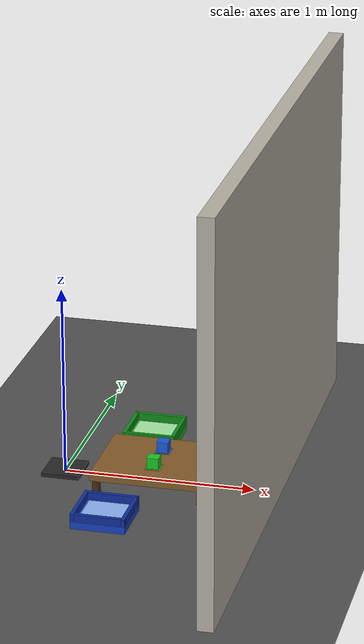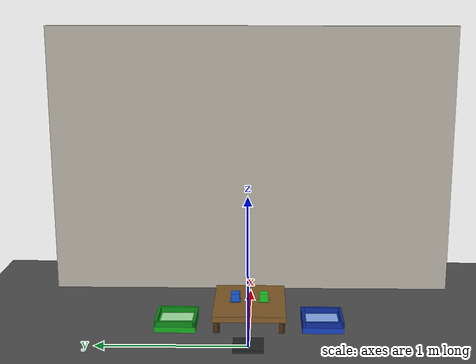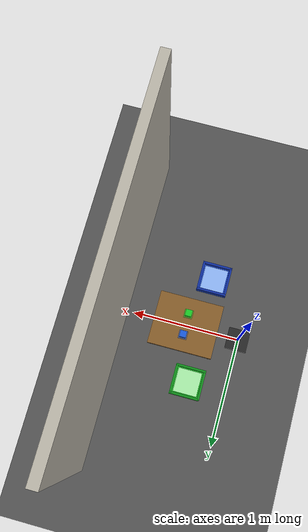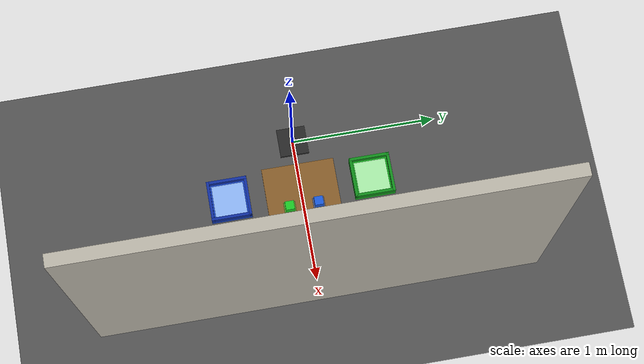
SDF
<?xml version="1.0" ?>
<sdf version="1.9">
<world name="object_world">

  <!-- ── Physics ──────────────────────────────────────────────────── -->
  <physics name="1ms" type="ignored">
    <max_step_size>0.001</max_step_size>
    <real_time_factor>1.0</real_time_factor>
  </physics>

  <!-- ── Required Gz Sim plugins ──────────────────────────────────── -->
  <plugin filename="gz-sim-physics-system"
          name="gz::sim::systems::Physics"/>
  <plugin filename="gz-sim-user-commands-system"
          name="gz::sim::systems::UserCommands"/>
  <plugin filename="gz-sim-scene-broadcaster-system"
          name="gz::sim::systems::SceneBroadcaster"/>
  <plugin filename="gz-sim-sensors-system"
          name="gz::sim::systems::Sensors">
    <render_engine>ogre2</render_engine>
  </plugin>
  <plugin filename="gz-sim-contact-system"
          name="gz::sim::systems::Contact"/>

  <!-- ── Scene / ambient ──────────────────────────────────────────── -->
  <scene>
    <ambient>0.45 0.45 0.45 1</ambient>
    <background>0.20 0.22 0.28 1</background>
    <shadows>true</shadows>
  </scene>

  <light name="sun" type="directional">
    <pose>0 0 10 0 0 0</pose>
    <cast_shadows>true</cast_shadows>
    <diffuse>0.85 0.85 0.85 1</diffuse>
    <specular>0.15 0.15 0.15 1</specular>
    <direction>-0.5 0.2 -0.9</direction>
    <attenuation>
      <range>1000</range><constant>0.9</constant>
      <linear>0.01</linear><quadratic>0.001</quadratic>
    </attenuation>
  </light>

  <light name="lamp_pick" type="point">
    <pose>0.5 0.0 1.8 0 0 0</pose>
    <diffuse>1.0 0.97 0.90 1</diffuse>
    <specular>0.3 0.3 0.3 1</specular>
    <attenuation><range>4</range><constant>0.4</constant>
      <linear>0.3</linear><quadratic>0.02</quadratic></attenuation>
    <cast_shadows>false</cast_shadows>
  </light>

  <light name="lamp_bins" type="point">
    <pose>0.35 0.0 1.8 0 0 0</pose>
    <diffuse>1.0 0.97 0.90 1</diffuse>
    <specular>0.3 0.3 0.3 1</specular>
    <attenuation><range>6</range><constant>0.35</constant>
      <linear>0.20</linear><quadratic>0.01</quadratic></attenuation>
    <cast_shadows>false</cast_shadows>
  </light>

  <!-- ── Ground plane ─────────────────────────────────────────────── -->
  <model name="ground_plane">
    <static>true</static>
    <link name="link">
      <collision name="collision">
        <geometry>
          <plane><normal>0 0 1</normal><size>10 10</size></plane>
        </geometry>
        <surface><friction><ode><mu>1.0</mu><mu2>1.0</mu2></ode></friction></surface>
      </collision>
      <visual name="visual">
        <geometry>
          <plane><normal>0 0 1</normal><size>10 10</size></plane>
        </geometry>
        <material>
          <ambient>0.32 0.32 0.32 1</ambient>
          <diffuse>0.32 0.32 0.32 1</diffuse>
          <specular>0.05 0.05 0.05 1</specular>
        </material>
      </visual>
    </link>
  </model>

  <!-- ── Robot mount plate ────────────────────────────────────────── -->
  <model name="robot_mount">
    <static>true</static>
    <pose>0 0 0 0 0 0</pose>
    <link name="link">
      <visual name="plate">
        <pose>0 0 0.01 0 0 0</pose>
        <geometry><box><size>0.20 0.20 0.02</size></box></geometry>
        <material>
          <ambient>0.15 0.15 0.15 1</ambient>
          <diffuse>0.15 0.15 0.15 1</diffuse>
          <specular>0.4 0.4 0.4 1</specular>
        </material>
      </visual>
      <collision name="plate">
        <pose>0 0 0.01 0 0 0</pose>
        <geometry><box><size>0.20 0.20 0.02</size></box></geometry>
      </collision>
    </link>
  </model>

  <!-- ── Pick table ───────────────────────────────────────────────── -->
  <model name="pick_table">
    <static>true</static>
    <pose>0.5 0.0 0 0 0 0</pose>
    <link name="link">
      <visual name="top">
        <pose>0 0 0.10 0 0 0</pose>
        <geometry><box><size>0.60 0.50 0.04</size></box></geometry>
        <material>
          <ambient>0.52 0.36 0.16 1</ambient>
          <diffuse>0.52 0.36 0.16 1</diffuse>
          <specular>0.05 0.05 0.05 1</specular>
        </material>
      </visual>
      <collision name="top">
        <pose>0 0 0.10 0 0 0</pose>
        <geometry><box><size>0.60 0.50 0.04</size></box></geometry>
        <surface><friction><ode><mu>0.8</mu><mu2>0.8</mu2></ode></friction></surface>
      </collision>
      <visual name="leg_fl">
        <pose>0.27  0.22 0.04 0 0 0</pose>
        <geometry><cylinder><radius>0.022</radius><length>0.08</length></cylinder></geometry>
        <material><ambient>0.28 0.18 0.08 1</ambient><diffuse>0.28 0.18 0.08 1</diffuse></material>
      </visual>
      <visual name="leg_fr">
        <pose>0.27 -0.22 0.04 0 0 0</pose>
        <geometry><cylinder><radius>0.022</radius><length>0.08</length></cylinder></geometry>
        <material><ambient>0.28 0.18 0.08 1</ambient><diffuse>0.28 0.18 0.08 1</diffuse></material>
      </visual>
      <visual name="leg_bl">
        <pose>-0.27  0.22 0.04 0 0 0</pose>
        <geometry><cylinder><radius>0.022</radius><length>0.08</length></cylinder></geometry>
        <material><ambient>0.28 0.18 0.08 1</ambient><diffuse>0.28 0.18 0.08 1</diffuse></material>
      </visual>
      <visual name="leg_br">
        <pose>-0.27 -0.22 0.04 0 0 0</pose>
        <geometry><cylinder><radius>0.022</radius><length>0.08</length></cylinder></geometry>
        <material><ambient>0.28 0.18 0.08 1</ambient><diffuse>0.28 0.18 0.08 1</diffuse></material>
      </visual>
      <!-- Block position markers on table surface -->
      <visual name="marker_a">
        <pose>0 -0.10 0.121 0 0 0</pose>
        <geometry><box><size>0.08 0.08 0.002</size></box></geometry>
        <material><ambient>0.10 0.78 0.14 0.5</ambient><diffuse>0.10 0.78 0.14 0.5</diffuse></material>
      </visual>
      <visual name="marker_b">
        <pose>0  0.10 0.121 0 0 0</pose>
        <geometry><box><size>0.08 0.08 0.002</size></box></geometry>
        <material><ambient>0.10 0.35 0.85 0.5</ambient><diffuse>0.10 0.35 0.85 0.5</diffuse></material>
      </visual>
    </link>
  </model>

  <!--  Block A — green cube                                          -->

  <model name="object_green">
    <pose>0.50 -0.10 0.15 0 0 0</pose>
    <link name="link">
      <inertial>
        <mass>0.25</mass>
        <inertia>
          <ixx>0.000150</ixx><ixy>0</ixy><ixz>0</ixz>
          <iyy>0.000150</iyy><iyz>0</iyz><izz>0.000150</izz>
        </inertia>
      </inertial>
      <collision name="col">
        <geometry><box><size>0.06 0.06 0.06</size></box></geometry>
        <surface>
          <friction><ode><mu>0.9</mu><mu2>0.9</mu2></ode></friction>
          <contact><ode><kp>1e6</kp><kd>1</kd></ode></contact>
        </surface>
      </collision>
      <visual name="vis">
        <geometry><box><size>0.06 0.06 0.06</size></box></geometry>
        <material>
          <ambient>0.10 0.78 0.14 1</ambient>
          <diffuse>0.10 0.78 0.14 1</diffuse>
          <specular>0.35 0.35 0.35 1</specular>
        </material>
      </visual>
    </link>
  </model>

  <!--  Block B — blue cube                                           -->

  <model name="object_blue">
    <pose>0.50 0.10 0.15 0 0 0</pose>
    <link name="link">
      <inertial>
        <mass>0.25</mass>
        <inertia>
          <ixx>0.000150</ixx><ixy>0</ixy><ixz>0</ixz>
          <iyy>0.000150</iyy><iyz>0</iyz><izz>0.000150</izz>
        </inertia>
      </inertial>
      <collision name="col">
        <geometry><box><size>0.06 0.06 0.06</size></box></geometry>
        <surface>
          <friction><ode><mu>0.9</mu><mu2>0.9</mu2></ode></friction>
          <contact><ode><kp>1e6</kp><kd>1</kd></ode></contact>
        </surface>
      </collision>
      <visual name="vis">
        <geometry><box><size>0.06 0.06 0.06</size></box></geometry>
        <material>
          <ambient>0.10 0.35 0.85 1</ambient>
          <diffuse>0.10 0.35 0.85 1</diffuse>
          <specular>0.35 0.35 0.35 1</specular>
        </material>
      </visual>
    </link>
  </model>

  <!--  GREEN bin at (0.35, +0.50)                                    -->

  <model name="bin_green">
    <static>true</static>
    <pose>0.35 0.50 0 0 0 0</pose>
    <link name="link">
      <visual name="base">
        <pose>0 0 0.02 0 0 0</pose>
        <geometry><box><size>0.28 0.28 0.04</size></box></geometry>
        <material>
          <ambient>0.08 0.68 0.12 1</ambient>
          <diffuse>0.08 0.68 0.12 1</diffuse>
          <specular>0.2 0.2 0.2 1</specular>
        </material>
      </visual>
      <collision name="base">
        <pose>0 0 0.02 0 0 0</pose>
        <geometry><box><size>0.28 0.28 0.04</size></box></geometry>
        <surface><friction><ode><mu>0.8</mu><mu2>0.8</mu2></ode></friction></surface>
      </collision>
      <visual name="inner">
        <pose>0 0 0.041 0 0 0</pose>
        <geometry><box><size>0.22 0.22 0.001</size></box></geometry>
        <material><ambient>0.65 0.92 0.65 1</ambient><diffuse>0.65 0.92 0.65 1</diffuse></material>
      </visual>
      <visual name="wall_n"><pose>0  0.13 0.06 0 0 0</pose>
        <geometry><box><size>0.28 0.02 0.04</size></box></geometry>
        <material><ambient>0.06 0.55 0.10 1</ambient><diffuse>0.06 0.55 0.10 1</diffuse></material>
      </visual>
      <collision name="wall_n"><pose>0  0.13 0.06 0 0 0</pose>
        <geometry><box><size>0.28 0.02 0.04</size></box></geometry></collision>
      <visual name="wall_s"><pose>0 -0.13 0.06 0 0 0</pose>
        <geometry><box><size>0.28 0.02 0.04</size></box></geometry>
        <material><ambient>0.06 0.55 0.10 1</ambient><diffuse>0.06 0.55 0.10 1</diffuse></material>
      </visual>
      <collision name="wall_s"><pose>0 -0.13 0.06 0 0 0</pose>
        <geometry><box><size>0.28 0.02 0.04</size></box></geometry></collision>
      <visual name="wall_e"><pose> 0.13 0 0.06 0 0 0</pose>
        <geometry><box><size>0.02 0.28 0.04</size></box></geometry>
        <material><ambient>0.06 0.55 0.10 1</ambient><diffuse>0.06 0.55 0.10 1</diffuse></material>
      </visual>
      <collision name="wall_e"><pose> 0.13 0 0.06 0 0 0</pose>
        <geometry><box><size>0.02 0.28 0.04</size></box></geometry></collision>
      <visual name="wall_w"><pose>-0.13 0 0.06 0 0 0</pose>
        <geometry><box><size>0.02 0.28 0.04</size></box></geometry>
        <material><ambient>0.06 0.55 0.10 1</ambient><diffuse>0.06 0.55 0.10 1</diffuse></material>
      </visual>
      <collision name="wall_w"><pose>-0.13 0 0.06 0 0 0</pose>
        <geometry><box><size>0.02 0.28 0.04</size></box></geometry></collision>
    </link>
  </model>

  <!--  BLUE bin at (0.35, -0.50)                                     -->

  <model name="bin_blue">
    <static>true</static>
    <pose>0.35 -0.50 0 0 0 0</pose>
    <link name="link">
      <visual name="base">
        <pose>0 0 0.02 0 0 0</pose>
        <geometry><box><size>0.28 0.28 0.04</size></box></geometry>
        <material>
          <ambient>0.08 0.25 0.75 1</ambient>
          <diffuse>0.08 0.25 0.75 1</diffuse>
          <specular>0.2 0.2 0.2 1</specular>
        </material>
      </visual>
      <collision name="base">
        <pose>0 0 0.02 0 0 0</pose>
        <geometry><box><size>0.28 0.28 0.04</size></box></geometry>
        <surface><friction><ode><mu>0.8</mu><mu2>0.8</mu2></ode></friction></surface>
      </collision>
      <visual name="inner">
        <pose>0 0 0.041 0 0 0</pose>
        <geometry><box><size>0.22 0.22 0.001</size></box></geometry>
        <material><ambient>0.55 0.70 0.95 1</ambient><diffuse>0.55 0.70 0.95 1</diffuse></material>
      </visual>
      <visual name="wall_n"><pose>0  0.13 0.06 0 0 0</pose>
        <geometry><box><size>0.28 0.02 0.04</size></box></geometry>
        <material><ambient>0.06 0.18 0.62 1</ambient><diffuse>0.06 0.18 0.62 1</diffuse></material>
      </visual>
      <collision name="wall_n"><pose>0  0.13 0.06 0 0 0</pose>
        <geometry><box><size>0.28 0.02 0.04</size></box></geometry></collision>
      <visual name="wall_s"><pose>0 -0.13 0.06 0 0 0</pose>
        <geometry><box><size>0.28 0.02 0.04</size></box></geometry>
        <material><ambient>0.06 0.18 0.62 1</ambient><diffuse>0.06 0.18 0.62 1</diffuse></material>
      </visual>
      <collision name="wall_s"><pose>0 -0.13 0.06 0 0 0</pose>
        <geometry><box><size>0.28 0.02 0.04</size></box></geometry></collision>
      <visual name="wall_e"><pose> 0.13 0 0.06 0 0 0</pose>
        <geometry><box><size>0.02 0.28 0.04</size></box></geometry>
        <material><ambient>0.06 0.18 0.62 1</ambient><diffuse>0.06 0.18 0.62 1</diffuse></material>
      </visual>
      <collision name="wall_e"><pose> 0.13 0 0.06 0 0 0</pose>
        <geometry><box><size>0.02 0.28 0.04</size></box></geometry></collision>
      <visual name="wall_w"><pose>-0.13 0 0.06 0 0 0</pose>
        <geometry><box><size>0.02 0.28 0.04</size></box></geometry>
        <material><ambient>0.06 0.18 0.62 1</ambient><diffuse>0.06 0.18 0.62 1</diffuse></material>
      </visual>
      <collision name="wall_w"><pose>-0.13 0 0.06 0 0 0</pose>
        <geometry><box><size>0.02 0.28 0.04</size></box></geometry></collision>
    </link>
  </model>

  <!-- ── Back wall ─────────────────────────────────────────────────── -->
  <model name="back_wall">
    <static>true</static>
    <pose>1.10 0 1.00 0 0 0</pose>
    <link name="link">
      <visual name="visual">
        <geometry><box><size>0.08 3.00 2.00</size></box></geometry>
        <material>
          <ambient>0.72 0.70 0.65 1</ambient>
          <diffuse>0.72 0.70 0.65 1</diffuse>
        </material>
      </visual>
      <collision name="collision">
        <geometry><box><size>0.08 3.00 2.00</size></box></geometry>
      </collision>
    </link>
  </model>

</world>
</sdf>
